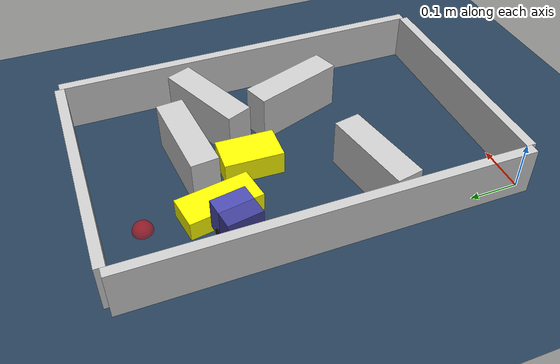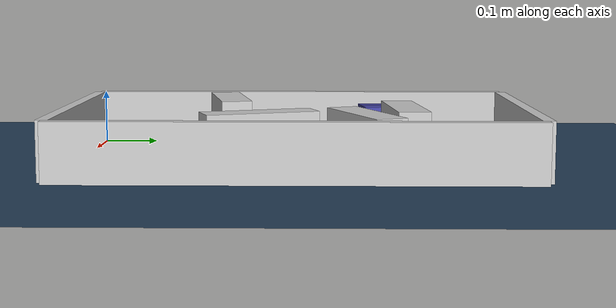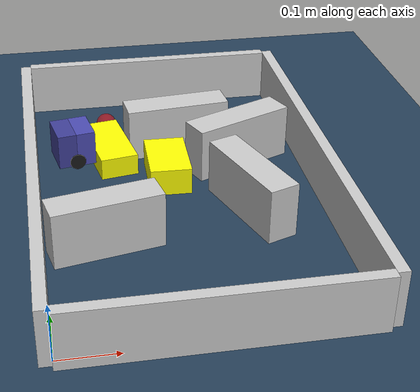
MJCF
<?xml version='1.0' encoding='utf-8'?>
<mujoco model="real_buildable">
  <compiler angle="degree" />
  <option timestep="0.002" integrator="implicitfast" iterations="100" cone="elliptic" />
  <default>
    <geom density="1" />
  </default>
  <asset>
    <texture builtin="gradient" height="3072" rgb1="0.3 0.5 0.7" rgb2="0 0 0" type="skybox" width="512" />
    <texture builtin="checker" height="300" mark="edge" markrgb="0.8 0.8 0.8" name="groundplane" rgb1="0.2 0.3 0.4" rgb2="0.1 0.2 0.3" type="2d" width="300" />
    <material name="groundplane" reflectance="0.2" texrepeat="5 5" texture="groundplane" texuniform="true" />
  </asset>
  <worldbody>
    <light dir="0 0 -1" directional="true" pos="0 0 1.5" />
    <geom name="floor" type="plane" condim="4" friction="0.5 0.005 0.001" material="groundplane" size="0 0 0.05" />
    <body name="walls">
      <geom name="wall_boundary_left" type="box" condim="4" friction="1.0 0.005 0.0001" rgba="0.8 0.8 0.8 1" pos="-0.010000 0.387500 0.050000" euler="0 0 0.000000" size="0.010000 0.397500 0.050000" />
      <geom name="wall_boundary_right" type="box" condim="4" friction="1.0 0.005 0.0001" rgba="0.8 0.8 0.8 1" pos="0.500000 0.387500 0.050000" euler="0 0 0.000000" size="0.010000 0.397500 0.050000" />
      <geom name="wall_boundary_bottom" type="box" condim="4" friction="1.0 0.005 0.0001" rgba="0.8 0.8 0.8 1" pos="0.245000 -0.010000 0.050000" euler="0 0 0.000000" size="0.245000 0.010000 0.050000" />
      <geom name="wall_boundary_top" type="box" condim="4" friction="1.0 0.005 0.0001" rgba="0.8 0.8 0.8 1" pos="0.245000 0.785000 0.050000" euler="0 0 0.000000" size="0.245000 0.010000 0.050000" />
      <geom name="wall_inner_1" type="box" condim="4" friction="1.0 0.005 0.0001" rgba="0.8 0.8 0.8 1" pos="0.101000 0.258000 0.050000" euler="0 0 11.400000" size="0.095000 0.027500 0.050000" />
      <geom name="wall_inner_2" type="box" condim="4" friction="1.0 0.005 0.0001" rgba="0.8 0.8 0.8 1" pos="0.361000 0.326000 0.050000" euler="0 0 109.700000" size="0.097500 0.027500 0.050000" />
      <geom name="wall_inner_3" type="box" condim="4" friction="1.0 0.005 0.0001" rgba="0.8 0.8 0.8 1" pos="0.269000 0.577000 0.050000" euler="0 0 5.500000" size="0.097500 0.027500 0.050000" />
      <geom name="wall_inner_4" type="box" condim="4" friction="1.0 0.005 0.0001" rgba="0.8 0.8 0.8 1" pos="0.374000 0.504000 0.050000" euler="0 0 23.200000" size="0.097500 0.027500 0.050000" />
    </body>
    <body name="car" pos="0.06752775412484624 0.54337774042884768 0.01" quat="0.99635880438888136 0 0 0.085259210157958037">
      <freejoint name="car_freejoint" />
      <inertial pos="0 0 0.0375" mass="0.35" diaginertia="0.000266 0.000266 0.000286" />
      <geom name="front_chassis_collision" type="box" pos="0.0175 0 0.0375" size="0.0175 0.035 0.0325" rgba="0.3 0.3 0.7 1" />
      <geom name="rear_chassis_collision" type="box" pos="-0.0175 0 0.0375" size="0.0175 0.035 0.0325" rgba="0.25 0.25 0.6 1" />
      <geom name="front_marker" type="box" pos="0.034 0 0.0505" size="0.002 0.015 0.01" rgba="1 0.2 0.2 1" contype="0" conaffinity="0" />
      <body name="rear_support_body" pos="-0.03 0 0.0025">
        <joint name="rear_caster_joint" type="ball" damping="0.0001" />
        <inertial pos="0 0 0" mass="0.025" diaginertia="0.000001 0.000001 0.000001" />
        <geom name="rear_support" type="sphere" pos="0 0 0" size="0.0025" friction="0 0 0" rgba="0.7 0.1 0.1 1" />
      </body>
      <body name="front_support_body" pos="0.03 0 0.0025">
        <joint name="front_caster_joint" type="ball" damping="0.0001" />
        <inertial pos="0 0 0" mass="0.025" diaginertia="0.000001 0.000001 0.000001" />
        <geom name="front_support" type="sphere" pos="0 0 0" size="0.0025" friction="0 0 0" rgba="0.1 0.7 0.1 1" />
      </body>
      <body name="left_wheel" pos="0 0.0375 0.015">
        <inertial pos="0 0 0" mass="0.05" diaginertia="0.000003 0.000006 0.000003" />
        <joint name="left_wheel_joint" type="hinge" axis="0 1 0" damping="0.01" armature="0.0001" />
        <geom name="left_wheel_collision" type="cylinder" size="0.015 0.0005" euler="90 0 0" rgba="0.1 0.1 0.1 1" />
      </body>
      <body name="right_wheel" pos="0 -0.0375 0.015">
        <inertial pos="0 0 0" mass="0.05" diaginertia="0.000003 0.000006 0.000003" />
        <joint name="right_wheel_joint" type="hinge" axis="0 1 0" damping="0.01" armature="0.0001" />
        <geom name="right_wheel_collision" type="cylinder" size="0.015 0.0005" euler="90 0 0" rgba="0.1 0.1 0.1 1" />
      </body>
    </body>
    <body name="obstacle_0_movable">
      <geom name="obstacle_0_movable" condim="4" pos="0.23522307675686024 0.4640236027876502 0.025000000000000001" friction="1 0.005 0.0001" rgba="1 1 0 1" size="0.037500 0.060000 0.025000" type="box" mass="0.1" quat="0.99988604994814101 0 0 -0.015095930547790884" />
      <joint type="free" />
    </body>
    <body name="obstacle_1_movable">
      <geom name="obstacle_1_movable" condim="4" pos="0.1366830382559775 0.55601810019270081 0.02" friction="1 0.005 0.0001" rgba="1 1 0 1" size="0.035000 0.075000 0.020000" type="box" mass="0.1" quat="0.99644528894875251 0 0 0.084242424774202462" />
      <joint type="free" />
    </body>
    <site name="goal" type="sphere" pos="0.144000 0.700000 0.0" size="0.02" rgba="1 0 0 0.5" />
  </worldbody>
  <actuator>
    <velocity name="left_wheel_drive" joint="left_wheel_joint" ctrlrange="-25 25" kv="0.75" forcerange="-0.5 0.5" />
    <velocity name="right_wheel_drive" joint="right_wheel_joint" ctrlrange="-25 25" kv="0.75" forcerange="-0.5 0.5" />
  </actuator>
</mujoco>
